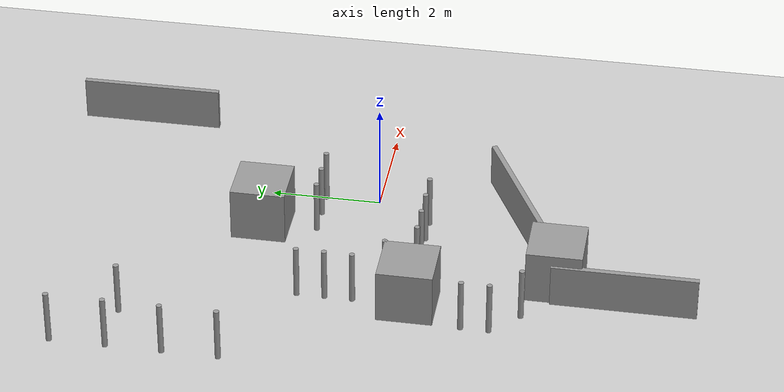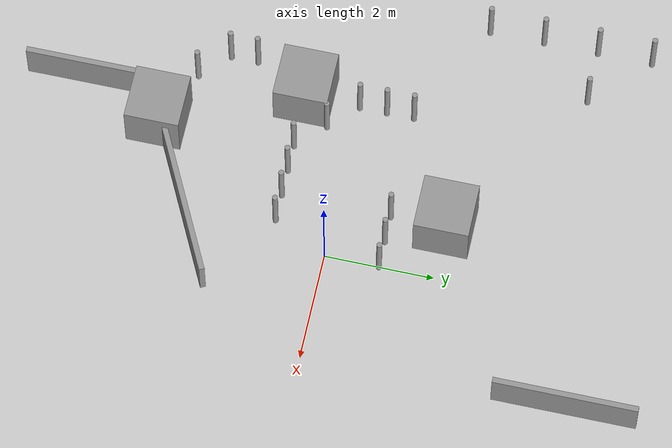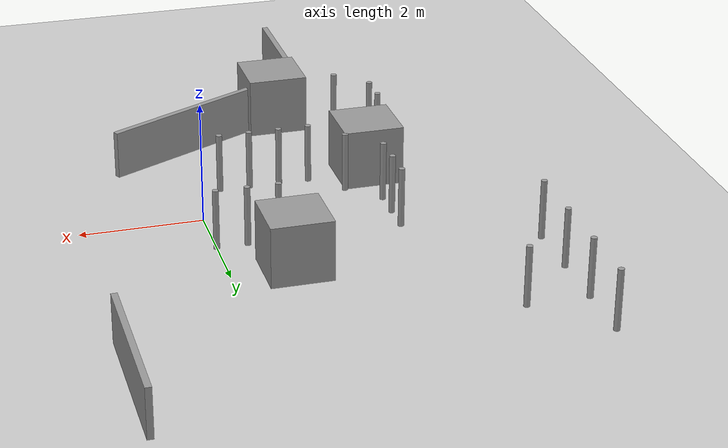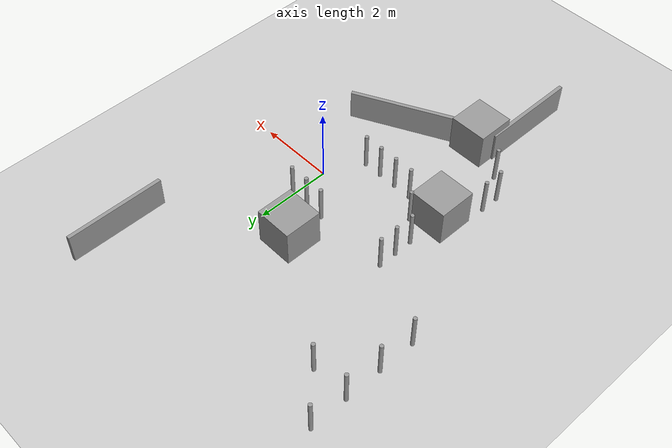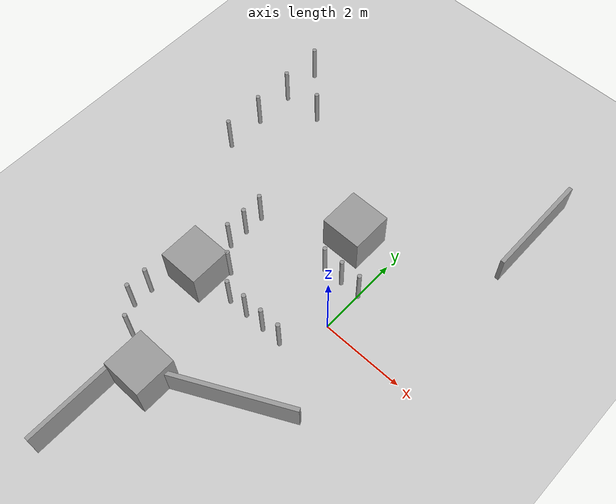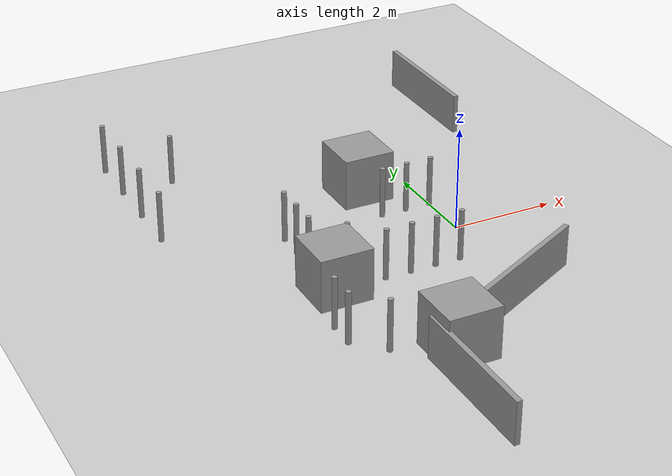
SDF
<sdf version="1.7">
 <world name="default">
  <model name="ground_plane">
   <static>1</static>
   <link name="link">
    <collision name="collision">
     <geometry><plane><normal>0 0 1</normal><size>100 100</size></plane></geometry>
     <surface>
      <contact><collide_bitmask>65535</collide_bitmask></contact>
      <friction><ode><mu>100</mu><mu2>50</mu2></ode></friction>
     </surface>
    </collision>
    <visual name="visual">
     <cast_shadows>0</cast_shadows>
     <geometry><plane><normal>0 0 1</normal><size>100 100</size></plane></geometry>
     <material>
      <script><uri>file://media/materials/scripts/gazebo.material</uri><name>Gazebo/Grey</name></script>
     </material>
    </visual>
   </link>
  </model>
  <model name="Cylindar_r01">
   <link name="link_0">
    <inertial>
     <mass>1</mass>
     <inertia><ixx>0.145833</ixx><ixy>0</ixy><ixz>0</ixz><iyy>0.145833</iyy><iyz>0</iyz><izz>0.125</izz></inertia>
    </inertial>
    <visual name="visual">
     <geometry><cylinder><radius>0.05</radius><length>1</length></cylinder></geometry>
     <material>
      <lighting>1</lighting>
      <script><uri>file://media/materials/scripts/gazebo.material</uri><name>Gazebo/Grey</name></script>
      <shader type="pixel"><normal_map>__default__</normal_map></shader>
      <ambient>0.3 0.3 0.3 1</ambient>
      <diffuse>0.7 0.7 0.7 1</diffuse>
      <specular>0.01 0.01 0.01 1</specular>
      <emissive>0 0 0 1</emissive>
     </material>
    </visual>
    <collision name="collision">
     <geometry><cylinder><radius>0.05</radius><length>1</length></cylinder></geometry>
     <surface>
      <friction>
       <ode><mu>1</mu><mu2>1</mu2><fdir1>0 0 0</fdir1><slip1>0</slip1><slip2>0</slip2></ode>
       <torsional>
        <coefficient>1</coefficient>
        <patch_radius>0</patch_radius>
        <surface_radius>0</surface_radius>
        <use_patch_radius>1</use_patch_radius>
        <ode><slip>0</slip></ode>
       </torsional>
      </friction>
      <bounce><restitution_coefficient>0</restitution_coefficient><threshold>1e+06</threshold></bounce>
      <contact>
       <collide_without_contact>0</collide_without_contact>
       <collide_without_contact_bitmask>1</collide_without_contact_bitmask>
       <collide_bitmask>1</collide_bitmask>
       <ode>
        <soft_cfm>0</soft_cfm>
        <soft_erp>0.2</soft_erp>
        <kp>1e+13</kp>
        <kd>1</kd>
        <max_vel>0.01</max_vel>
        <min_depth>0</min_depth>
       </ode>
       <bullet>
        <split_impulse>1</split_impulse>
        <split_impulse_penetration_threshold>-0.01</split_impulse_penetration_threshold>
        <soft_cfm>0</soft_cfm>
        <soft_erp>0.2</soft_erp>
        <kp>1e+13</kp>
        <kd>1</kd>
       </bullet>
      </contact>
     </surface>
    </collision>
   </link>
   <static>0</static>
   <pose>0 1 0.5 0 -0 0</pose>
  </model>
  <model name="Cylindar_r01_clone_3">
   <link name="link_0">
    <inertial>
     <mass>1</mass>
     <inertia><ixx>0.145833</ixx><ixy>0</ixy><ixz>0</ixz><iyy>0.145833</iyy><iyz>0</iyz><izz>0.125</izz></inertia>
    </inertial>
    <visual name="visual">
     <geometry><cylinder><radius>0.05</radius><length>1</length></cylinder></geometry>
     <material>
      <lighting>1</lighting>
      <script><uri>file://media/materials/scripts/gazebo.material</uri><name>Gazebo/Grey</name></script>
      <shader type="pixel"><normal_map>__default__</normal_map></shader>
      <ambient>0.3 0.3 0.3 1</ambient>
      <diffuse>0.7 0.7 0.7 1</diffuse>
      <specular>0.01 0.01 0.01 1</specular>
      <emissive>0 0 0 1</emissive>
     </material>
    </visual>
    <collision name="collision">
     <geometry><cylinder><radius>0.05</radius><length>1</length></cylinder></geometry>
     <surface>
      <friction>
       <ode><mu>1</mu><mu2>1</mu2><fdir1>0 0 0</fdir1><slip1>0</slip1><slip2>0</slip2></ode>
       <torsional>
        <coefficient>1</coefficient>
        <patch_radius>0</patch_radius>
        <surface_radius>0</surface_radius>
        <use_patch_radius>1</use_patch_radius>
        <ode><slip>0</slip></ode>
       </torsional>
      </friction>
      <bounce><restitution_coefficient>0</restitution_coefficient><threshold>1e+06</threshold></bounce>
      <contact>
       <collide_without_contact>0</collide_without_contact>
       <collide_without_contact_bitmask>1</collide_without_contact_bitmask>
       <collide_bitmask>1</collide_bitmask>
       <ode>
        <soft_cfm>0</soft_cfm>
        <soft_erp>0.2</soft_erp>
        <kp>1e+13</kp>
        <kd>1</kd>
        <max_vel>0.01</max_vel>
        <min_depth>0</min_depth>
       </ode>
       <bullet>
        <split_impulse>1</split_impulse>
        <split_impulse_penetration_threshold>-0.01</split_impulse_penetration_threshold>
        <soft_cfm>0</soft_cfm>
        <soft_erp>0.2</soft_erp>
        <kp>1e+13</kp>
        <kd>1</kd>
       </bullet>
      </contact>
     </surface>
    </collision>
   </link>
   <static>0</static>
   <pose>-0.5 1 0.5 0 -0 0</pose>
  </model>
  <model name="Cylindar_r01_clone_4">
   <link name="link_0">
    <inertial>
     <mass>1</mass>
     <inertia><ixx>0.145833</ixx><ixy>0</ixy><ixz>0</ixz><iyy>0.145833</iyy><iyz>0</iyz><izz>0.125</izz></inertia>
    </inertial>
    <visual name="visual">
     <geometry><cylinder><radius>0.05</radius><length>1</length></cylinder></geometry>
     <material>
      <lighting>1</lighting>
      <script><uri>file://media/materials/scripts/gazebo.material</uri><name>Gazebo/Grey</name></script>
      <shader type="pixel"><normal_map>__default__</normal_map></shader>
      <ambient>0.3 0.3 0.3 1</ambient>
      <diffuse>0.7 0.7 0.7 1</diffuse>
      <specular>0.01 0.01 0.01 1</specular>
      <emissive>0 0 0 1</emissive>
     </material>
    </visual>
    <collision name="collision">
     <geometry><cylinder><radius>0.05</radius><length>1</length></cylinder></geometry>
     <surface>
      <friction>
       <ode><mu>1</mu><mu2>1</mu2><fdir1>0 0 0</fdir1><slip1>0</slip1><slip2>0</slip2></ode>
       <torsional>
        <coefficient>1</coefficient>
        <patch_radius>0</patch_radius>
        <surface_radius>0</surface_radius>
        <use_patch_radius>1</use_patch_radius>
        <ode><slip>0</slip></ode>
       </torsional>
      </friction>
      <bounce><restitution_coefficient>0</restitution_coefficient><threshold>1e+06</threshold></bounce>
      <contact>
       <collide_without_contact>0</collide_without_contact>
       <collide_without_contact_bitmask>1</collide_without_contact_bitmask>
       <collide_bitmask>1</collide_bitmask>
       <ode>
        <soft_cfm>0</soft_cfm>
        <soft_erp>0.2</soft_erp>
        <kp>1e+13</kp>
        <kd>1</kd>
        <max_vel>0.01</max_vel>
        <min_depth>0</min_depth>
       </ode>
       <bullet>
        <split_impulse>1</split_impulse>
        <split_impulse_penetration_threshold>-0.01</split_impulse_penetration_threshold>
        <soft_cfm>0</soft_cfm>
        <soft_erp>0.2</soft_erp>
        <kp>1e+13</kp>
        <kd>1</kd>
       </bullet>
      </contact>
     </surface>
    </collision>
   </link>
   <static>0</static>
   <pose>-1 1 0.5 0 -0 0</pose>
  </model>
  <model name="Cylindar_r01_clone_10">
   <link name="link_0">
    <inertial>
     <mass>1</mass>
     <inertia><ixx>0.145833</ixx><ixy>0</ixy><ixz>0</ixz><iyy>0.145833</iyy><iyz>0</iyz><izz>0.125</izz></inertia>
    </inertial>
    <visual name="visual">
     <geometry><cylinder><radius>0.05</radius><length>1</length></cylinder></geometry>
     <material>
      <lighting>1</lighting>
      <script><uri>file://media/materials/scripts/gazebo.material</uri><name>Gazebo/Grey</name></script>
      <shader type="pixel"><normal_map>__default__</normal_map></shader>
      <ambient>0.3 0.3 0.3 1</ambient>
      <diffuse>0.7 0.7 0.7 1</diffuse>
      <specular>0.01 0.01 0.01 1</specular>
      <emissive>0 0 0 1</emissive>
     </material>
    </visual>
    <collision name="collision">
     <geometry><cylinder><radius>0.05</radius><length>1</length></cylinder></geometry>
     <surface>
      <friction>
       <ode><mu>1</mu><mu2>1</mu2><fdir1>0 0 0</fdir1><slip1>0</slip1><slip2>0</slip2></ode>
       <torsional>
        <coefficient>1</coefficient>
        <patch_radius>0</patch_radius>
        <surface_radius>0</surface_radius>
        <use_patch_radius>1</use_patch_radius>
        <ode><slip>0</slip></ode>
       </torsional>
      </friction>
      <bounce><restitution_coefficient>0</restitution_coefficient><threshold>1e+06</threshold></bounce>
      <contact>
       <collide_without_contact>0</collide_without_contact>
       <collide_without_contact_bitmask>1</collide_without_contact_bitmask>
       <collide_bitmask>1</collide_bitmask>
       <ode>
        <soft_cfm>0</soft_cfm>
        <soft_erp>0.2</soft_erp>
        <kp>1e+13</kp>
        <kd>1</kd>
        <max_vel>0.01</max_vel>
        <min_depth>0</min_depth>
       </ode>
       <bullet>
        <split_impulse>1</split_impulse>
        <split_impulse_penetration_threshold>-0.01</split_impulse_penetration_threshold>
        <soft_cfm>0</soft_cfm>
        <soft_erp>0.2</soft_erp>
        <kp>1e+13</kp>
        <kd>1</kd>
       </bullet>
      </contact>
     </surface>
    </collision>
   </link>
   <static>0</static>
   <pose>-0.5 -1 0.5 0 -0 0</pose>
  </model>
  <model name="Cylindar_r01_clone_11">
   <link name="link_0">
    <inertial>
     <mass>1</mass>
     <inertia><ixx>0.145833</ixx><ixy>0</ixy><ixz>0</ixz><iyy>0.145833</iyy><iyz>0</iyz><izz>0.125</izz></inertia>
    </inertial>
    <visual name="visual">
     <geometry><cylinder><radius>0.05</radius><length>1</length></cylinder></geometry>
     <material>
      <lighting>1</lighting>
      <script><uri>file://media/materials/scripts/gazebo.material</uri><name>Gazebo/Grey</name></script>
      <shader type="pixel"><normal_map>__default__</normal_map></shader>
      <ambient>0.3 0.3 0.3 1</ambient>
      <diffuse>0.7 0.7 0.7 1</diffuse>
      <specular>0.01 0.01 0.01 1</specular>
      <emissive>0 0 0 1</emissive>
     </material>
    </visual>
    <collision name="collision">
     <geometry><cylinder><radius>0.05</radius><length>1</length></cylinder></geometry>
     <surface>
      <friction>
       <ode><mu>1</mu><mu2>1</mu2><fdir1>0 0 0</fdir1><slip1>0</slip1><slip2>0</slip2></ode>
       <torsional>
        <coefficient>1</coefficient>
        <patch_radius>0</patch_radius>
        <surface_radius>0</surface_radius>
        <use_patch_radius>1</use_patch_radius>
        <ode><slip>0</slip></ode>
       </torsional>
      </friction>
      <bounce><restitution_coefficient>0</restitution_coefficient><threshold>1e+06</threshold></bounce>
      <contact>
       <collide_without_contact>0</collide_without_contact>
       <collide_without_contact_bitmask>1</collide_without_contact_bitmask>
       <collide_bitmask>1</collide_bitmask>
       <ode>
        <soft_cfm>0</soft_cfm>
        <soft_erp>0.2</soft_erp>
        <kp>1e+13</kp>
        <kd>1</kd>
        <max_vel>0.01</max_vel>
        <min_depth>0</min_depth>
       </ode>
       <bullet>
        <split_impulse>1</split_impulse>
        <split_impulse_penetration_threshold>-0.01</split_impulse_penetration_threshold>
        <soft_cfm>0</soft_cfm>
        <soft_erp>0.2</soft_erp>
        <kp>1e+13</kp>
        <kd>1</kd>
       </bullet>
      </contact>
     </surface>
    </collision>
   </link>
   <static>0</static>
   <pose>-1 -1 0.5 0 -0 0</pose>
  </model>
  <model name="Cylindar_r01_clone_11_clone">
   <link name="link_0">
    <inertial>
     <mass>1</mass>
     <inertia><ixx>0.145833</ixx><ixy>0</ixy><ixz>0</ixz><iyy>0.145833</iyy><iyz>0</iyz><izz>0.125</izz></inertia>
    </inertial>
    <visual name="visual">
     <geometry><cylinder><radius>0.05</radius><length>1</length></cylinder></geometry>
     <material>
      <lighting>1</lighting>
      <script><uri>file://media/materials/scripts/gazebo.material</uri><name>Gazebo/Grey</name></script>
      <shader type="pixel"><normal_map>__default__</normal_map></shader>
      <ambient>0.3 0.3 0.3 1</ambient>
      <diffuse>0.7 0.7 0.7 1</diffuse>
      <specular>0.01 0.01 0.01 1</specular>
      <emissive>0 0 0 1</emissive>
     </material>
    </visual>
    <collision name="collision">
     <geometry><cylinder><radius>0.05</radius><length>1</length></cylinder></geometry>
     <surface>
      <friction>
       <ode><mu>1</mu><mu2>1</mu2><fdir1>0 0 0</fdir1><slip1>0</slip1><slip2>0</slip2></ode>
       <torsional>
        <coefficient>1</coefficient>
        <patch_radius>0</patch_radius>
        <surface_radius>0</surface_radius>
        <use_patch_radius>1</use_patch_radius>
        <ode><slip>0</slip></ode>
       </torsional>
      </friction>
      <bounce><restitution_coefficient>0</restitution_coefficient><threshold>1e+06</threshold></bounce>
      <contact>
       <collide_without_contact>0</collide_without_contact>
       <collide_without_contact_bitmask>1</collide_without_contact_bitmask>
       <collide_bitmask>1</collide_bitmask>
       <ode>
        <soft_cfm>0</soft_cfm>
        <soft_erp>0.2</soft_erp>
        <kp>1e+13</kp>
        <kd>1</kd>
        <max_vel>0.01</max_vel>
        <min_depth>0</min_depth>
       </ode>
       <bullet>
        <split_impulse>1</split_impulse>
        <split_impulse_penetration_threshold>-0.01</split_impulse_penetration_threshold>
        <soft_cfm>0</soft_cfm>
        <soft_erp>0.2</soft_erp>
        <kp>1e+13</kp>
        <kd>1</kd>
       </bullet>
      </contact>
     </surface>
    </collision>
   </link>
   <static>0</static>
   <pose>-1.5 -1 0.5 0 -0 0</pose>
  </model>
  <model name="Cylindar_r01_clone_11_clone_0">
   <link name="link_0">
    <inertial>
     <mass>1</mass>
     <inertia><ixx>0.145833</ixx><ixy>0</ixy><ixz>0</ixz><iyy>0.145833</iyy><iyz>0</iyz><izz>0.125</izz></inertia>
    </inertial>
    <visual name="visual">
     <geometry><cylinder><radius>0.05</radius><length>1</length></cylinder></geometry>
     <material>
      <lighting>1</lighting>
      <script><uri>file://media/materials/scripts/gazebo.material</uri><name>Gazebo/Grey</name></script>
      <shader type="pixel"><normal_map>__default__</normal_map></shader>
      <ambient>0.3 0.3 0.3 1</ambient>
      <diffuse>0.7 0.7 0.7 1</diffuse>
      <specular>0.01 0.01 0.01 1</specular>
      <emissive>0 0 0 1</emissive>
     </material>
    </visual>
    <collision name="collision">
     <geometry><cylinder><radius>0.05</radius><length>1</length></cylinder></geometry>
     <surface>
      <friction>
       <ode><mu>1</mu><mu2>1</mu2><fdir1>0 0 0</fdir1><slip1>0</slip1><slip2>0</slip2></ode>
       <torsional>
        <coefficient>1</coefficient>
        <patch_radius>0</patch_radius>
        <surface_radius>0</surface_radius>
        <use_patch_radius>1</use_patch_radius>
        <ode><slip>0</slip></ode>
       </torsional>
      </friction>
      <bounce><restitution_coefficient>0</restitution_coefficient><threshold>1e+06</threshold></bounce>
      <contact>
       <collide_without_contact>0</collide_without_contact>
       <collide_without_contact_bitmask>1</collide_without_contact_bitmask>
       <collide_bitmask>1</collide_bitmask>
       <ode>
        <soft_cfm>0</soft_cfm>
        <soft_erp>0.2</soft_erp>
        <kp>1e+13</kp>
        <kd>1</kd>
        <max_vel>0.01</max_vel>
        <min_depth>0</min_depth>
       </ode>
       <bullet>
        <split_impulse>1</split_impulse>
        <split_impulse_penetration_threshold>-0.01</split_impulse_penetration_threshold>
        <soft_cfm>0</soft_cfm>
        <soft_erp>0.2</soft_erp>
        <kp>1e+13</kp>
        <kd>1</kd>
       </bullet>
      </contact>
     </surface>
    </collision>
   </link>
   <static>0</static>
   <pose>-2 -1 0.5 0 -0 0</pose>
  </model>
  <model name="Cylindar_r01_clone_11_clone_1">
   <link name="link_0">
    <inertial>
     <mass>1</mass>
     <inertia><ixx>0.145833</ixx><ixy>0</ixy><ixz>0</ixz><iyy>0.145833</iyy><iyz>0</iyz><izz>0.125</izz></inertia>
    </inertial>
    <visual name="visual">
     <geometry><cylinder><radius>0.05</radius><length>1</length></cylinder></geometry>
     <material>
      <lighting>1</lighting>
      <script><uri>file://media/materials/scripts/gazebo.material</uri><name>Gazebo/Grey</name></script>
      <shader type="pixel"><normal_map>__default__</normal_map></shader>
      <ambient>0.3 0.3 0.3 1</ambient>
      <diffuse>0.7 0.7 0.7 1</diffuse>
      <specular>0.01 0.01 0.01 1</specular>
      <emissive>0 0 0 1</emissive>
     </material>
    </visual>
    <collision name="collision">
     <geometry><cylinder><radius>0.05</radius><length>1</length></cylinder></geometry>
     <surface>
      <friction>
       <ode><mu>1</mu><mu2>1</mu2><fdir1>0 0 0</fdir1><slip1>0</slip1><slip2>0</slip2></ode>
       <torsional>
        <coefficient>1</coefficient>
        <patch_radius>0</patch_radius>
        <surface_radius>0</surface_radius>
        <use_patch_radius>1</use_patch_radius>
        <ode><slip>0</slip></ode>
       </torsional>
      </friction>
      <bounce><restitution_coefficient>0</restitution_coefficient><threshold>1e+06</threshold></bounce>
      <contact>
       <collide_without_contact>0</collide_without_contact>
       <collide_without_contact_bitmask>1</collide_without_contact_bitmask>
       <collide_bitmask>1</collide_bitmask>
       <ode>
        <soft_cfm>0</soft_cfm>
        <soft_erp>0.2</soft_erp>
        <kp>1e+13</kp>
        <kd>1</kd>
        <max_vel>0.01</max_vel>
        <min_depth>0</min_depth>
       </ode>
       <bullet>
        <split_impulse>1</split_impulse>
        <split_impulse_penetration_threshold>-0.01</split_impulse_penetration_threshold>
        <soft_cfm>0</soft_cfm>
        <soft_erp>0.2</soft_erp>
        <kp>1e+13</kp>
        <kd>1</kd>
       </bullet>
      </contact>
     </surface>
    </collision>
   </link>
   <static>0</static>
   <pose>-2.5 -0.5 0.5 0 -0 0</pose>
  </model>
  <model name="Cylindar_r01_clone_11_clone_2">
   <link name="link_0">
    <inertial>
     <mass>1</mass>
     <inertia><ixx>0.145833</ixx><ixy>0</ixy><ixz>0</ixz><iyy>0.145833</iyy><iyz>0</iyz><izz>0.125</izz></inertia>
    </inertial>
    <visual name="visual">
     <geometry><cylinder><radius>0.05</radius><length>1</length></cylinder></geometry>
     <material>
      <lighting>1</lighting>
      <script><uri>file://media/materials/scripts/gazebo.material</uri><name>Gazebo/Grey</name></script>
      <shader type="pixel"><normal_map>__default__</normal_map></shader>
      <ambient>0.3 0.3 0.3 1</ambient>
      <diffuse>0.7 0.7 0.7 1</diffuse>
      <specular>0.01 0.01 0.01 1</specular>
      <emissive>0 0 0 1</emissive>
     </material>
    </visual>
    <collision name="collision">
     <geometry><cylinder><radius>0.05</radius><length>1</length></cylinder></geometry>
     <surface>
      <friction>
       <ode><mu>1</mu><mu2>1</mu2><fdir1>0 0 0</fdir1><slip1>0</slip1><slip2>0</slip2></ode>
       <torsional>
        <coefficient>1</coefficient>
        <patch_radius>0</patch_radius>
        <surface_radius>0</surface_radius>
        <use_patch_radius>1</use_patch_radius>
        <ode><slip>0</slip></ode>
       </torsional>
      </friction>
      <bounce><restitution_coefficient>0</restitution_coefficient><threshold>1e+06</threshold></bounce>
      <contact>
       <collide_without_contact>0</collide_without_contact>
       <collide_without_contact_bitmask>1</collide_without_contact_bitmask>
       <collide_bitmask>1</collide_bitmask>
       <ode>
        <soft_cfm>0</soft_cfm>
        <soft_erp>0.2</soft_erp>
        <kp>1e+13</kp>
        <kd>1</kd>
        <max_vel>0.01</max_vel>
        <min_depth>0</min_depth>
       </ode>
       <bullet>
        <split_impulse>1</split_impulse>
        <split_impulse_penetration_threshold>-0.01</split_impulse_penetration_threshold>
        <soft_cfm>0</soft_cfm>
        <soft_erp>0.2</soft_erp>
        <kp>1e+13</kp>
        <kd>1</kd>
       </bullet>
      </contact>
     </surface>
    </collision>
   </link>
   <static>0</static>
   <pose>-3 0 0.5 0 -0 0</pose>
  </model>
  <model name="Cylindar_r01_clone_11_clone_3">
   <link name="link_0">
    <inertial>
     <mass>1</mass>
     <inertia><ixx>0.145833</ixx><ixy>0</ixy><ixz>0</ixz><iyy>0.145833</iyy><iyz>0</iyz><izz>0.125</izz></inertia>
    </inertial>
    <visual name="visual">
     <geometry><cylinder><radius>0.05</radius><length>1</length></cylinder></geometry>
     <material>
      <lighting>1</lighting>
      <script><uri>file://media/materials/scripts/gazebo.material</uri><name>Gazebo/Grey</name></script>
      <shader type="pixel"><normal_map>__default__</normal_map></shader>
      <ambient>0.3 0.3 0.3 1</ambient>
      <diffuse>0.7 0.7 0.7 1</diffuse>
      <specular>0.01 0.01 0.01 1</specular>
      <emissive>0 0 0 1</emissive>
     </material>
    </visual>
    <collision name="collision">
     <geometry><cylinder><radius>0.05</radius><length>1</length></cylinder></geometry>
     <surface>
      <friction>
       <ode><mu>1</mu><mu2>1</mu2><fdir1>0 0 0</fdir1><slip1>0</slip1><slip2>0</slip2></ode>
       <torsional>
        <coefficient>1</coefficient>
        <patch_radius>0</patch_radius>
        <surface_radius>0</surface_radius>
        <use_patch_radius>1</use_patch_radius>
        <ode><slip>0</slip></ode>
       </torsional>
      </friction>
      <bounce><restitution_coefficient>0</restitution_coefficient><threshold>1e+06</threshold></bounce>
      <contact>
       <collide_without_contact>0</collide_without_contact>
       <collide_without_contact_bitmask>1</collide_without_contact_bitmask>
       <collide_bitmask>1</collide_bitmask>
       <ode>
        <soft_cfm>0</soft_cfm>
        <soft_erp>0.2</soft_erp>
        <kp>1e+13</kp>
        <kd>1</kd>
        <max_vel>0.01</max_vel>
        <min_depth>0</min_depth>
       </ode>
       <bullet>
        <split_impulse>1</split_impulse>
        <split_impulse_penetration_threshold>-0.01</split_impulse_penetration_threshold>
        <soft_cfm>0</soft_cfm>
        <soft_erp>0.2</soft_erp>
        <kp>1e+13</kp>
        <kd>1</kd>
       </bullet>
      </contact>
     </surface>
    </collision>
   </link>
   <static>0</static>
   <pose>-3 0.5 0.5 0 -0 0</pose>
  </model>
  <model name="Cylindar_r01_clone_11_clone_4">
   <link name="link_0">
    <inertial>
     <mass>1</mass>
     <inertia><ixx>0.145833</ixx><ixy>0</ixy><ixz>0</ixz><iyy>0.145833</iyy><iyz>0</iyz><izz>0.125</izz></inertia>
    </inertial>
    <visual name="visual">
     <geometry><cylinder><radius>0.05</radius><length>1</length></cylinder></geometry>
     <material>
      <lighting>1</lighting>
      <script><uri>file://media/materials/scripts/gazebo.material</uri><name>Gazebo/Grey</name></script>
      <shader type="pixel"><normal_map>__default__</normal_map></shader>
      <ambient>0.3 0.3 0.3 1</ambient>
      <diffuse>0.7 0.7 0.7 1</diffuse>
      <specular>0.01 0.01 0.01 1</specular>
      <emissive>0 0 0 1</emissive>
     </material>
    </visual>
    <collision name="collision">
     <geometry><cylinder><radius>0.05</radius><length>1</length></cylinder></geometry>
     <surface>
      <friction>
       <ode><mu>1</mu><mu2>1</mu2><fdir1>0 0 0</fdir1><slip1>0</slip1><slip2>0</slip2></ode>
       <torsional>
        <coefficient>1</coefficient>
        <patch_radius>0</patch_radius>
        <surface_radius>0</surface_radius>
        <use_patch_radius>1</use_patch_radius>
        <ode><slip>0</slip></ode>
       </torsional>
      </friction>
      <bounce><restitution_coefficient>0</restitution_coefficient><threshold>1e+06</threshold></bounce>
      <contact>
       <collide_without_contact>0</collide_without_contact>
       <collide_without_contact_bitmask>1</collide_without_contact_bitmask>
       <collide_bitmask>1</collide_bitmask>
       <ode>
        <soft_cfm>0</soft_cfm>
        <soft_erp>0.2</soft_erp>
        <kp>1e+13</kp>
        <kd>1</kd>
        <max_vel>0.01</max_vel>
        <min_depth>0</min_depth>
       </ode>
       <bullet>
        <split_impulse>1</split_impulse>
        <split_impulse_penetration_threshold>-0.01</split_impulse_penetration_threshold>
        <soft_cfm>0</soft_cfm>
        <soft_erp>0.2</soft_erp>
        <kp>1e+13</kp>
        <kd>1</kd>
       </bullet>
      </contact>
     </surface>
    </collision>
   </link>
   <static>0</static>
   <pose>-3 1 0.5 0 -0 0</pose>
  </model>
  <model name="unit_box">
   <pose>-3 -1 0.5 0 -0 0</pose>
   <link name="link">
    <inertial>
     <mass>1</mass>
     <inertia>
      <ixx>0.166667</ixx>
      <ixy>0</ixy>
      <ixz>0</ixz>
      <iyy>0.166667</iyy>
      <iyz>0</iyz>
      <izz>0.166667</izz>
     </inertia>
    </inertial>
    <collision name="collision"><geometry><box><size>1 1 1</size></box></geometry></collision>
    <visual name="visual">
     <geometry><box><size>1 1 1</size></box></geometry>
     <material>
      <script><name>Gazebo/Grey</name><uri>file://media/materials/scripts/gazebo.material</uri></script>
     </material>
    </visual>
   </link>
  </model>
  <model name="unit_box_0">
   <pose>-1 2 0.5 0 -0 0</pose>
   <link name="link">
    <inertial>
     <mass>1</mass>
     <inertia>
      <ixx>0.166667</ixx>
      <ixy>0</ixy>
      <ixz>0</ixz>
      <iyy>0.166667</iyy>
      <iyz>0</iyz>
      <izz>0.166667</izz>
     </inertia>
    </inertial>
    <collision name="collision"><geometry><box><size>1 1 1</size></box></geometry></collision>
    <visual name="visual">
     <geometry><box><size>1 1 1</size></box></geometry>
     <material>
      <script><name>Gazebo/Grey</name><uri>file://media/materials/scripts/gazebo.material</uri></script>
     </material>
    </visual>
   </link>
  </model>
  <model name="unit_box_1">
   <pose>-2 -3.5 0.5 0 -0 0</pose>
   <link name="link">
    <inertial>
     <mass>1</mass>
     <inertia>
      <ixx>0.166667</ixx>
      <ixy>0</ixy>
      <ixz>0</ixz>
      <iyy>0.166667</iyy>
      <iyz>0</iyz>
      <izz>0.166667</izz>
     </inertia>
    </inertial>
    <collision name="collision"><geometry><box><size>1 1 1</size></box></geometry></collision>
    <visual name="visual">
     <geometry><box><size>1 1 1</size></box></geometry>
     <material>
      <script><name>Gazebo/Grey</name><uri>file://media/materials/scripts/gazebo.material</uri></script>
     </material>
    </visual>
   </link>
  </model>
  <model name="wall_connected">
   <pose>-0.5 -1.78354 0 0 -0 0</pose>
   <link name="Wall_12">
    <collision name="Wall_12_Collision">
     <geometry><box><size>3.4541 0.1 0.8</size></box></geometry>
     <pose>0 0 0.4 0 -0 0</pose>
    </collision>
    <visual name="Wall_12_Visual">
     <pose>0 0 0.4 0 -0 0</pose>
     <geometry><box><size>3.4541 0.1 0.8</size></box></geometry>
     <material>
      <script><uri>file://media/materials/scripts/gazebo.material</uri><name>Gazebo/Grey</name></script>
      <ambient>1 1 1 1</ambient>
     </material>
     <meta><layer>0</layer></meta>
    </visual>
    <pose>0 -0.966459 0 0 -0 -2.67794</pose>
   </link>
   <static>1</static>
  </model>
  <model name="Cylindar_r01_clone_11_clone_0_clone">
   <link name="link_0">
    <inertial>
     <mass>1</mass>
     <inertia><ixx>0.145833</ixx><ixy>0</ixy><ixz>0</ixz><iyy>0.145833</iyy><iyz>0</iyz><izz>0.125</izz></inertia>
    </inertial>
    <visual name="visual">
     <geometry><cylinder><radius>0.05</radius><length>1</length></cylinder></geometry>
     <material>
      <lighting>1</lighting>
      <script><uri>file://media/materials/scripts/gazebo.material</uri><name>Gazebo/Grey</name></script>
      <shader type="pixel"><normal_map>__default__</normal_map></shader>
      <ambient>0.3 0.3 0.3 1</ambient>
      <diffuse>0.7 0.7 0.7 1</diffuse>
      <specular>0.01 0.01 0.01 1</specular>
      <emissive>0 0 0 1</emissive>
     </material>
    </visual>
    <collision name="collision">
     <geometry><cylinder><radius>0.05</radius><length>1</length></cylinder></geometry>
     <surface>
      <friction>
       <ode><mu>1</mu><mu2>1</mu2><fdir1>0 0 0</fdir1><slip1>0</slip1><slip2>0</slip2></ode>
       <torsional>
        <coefficient>1</coefficient>
        <patch_radius>0</patch_radius>
        <surface_radius>0</surface_radius>
        <use_patch_radius>1</use_patch_radius>
        <ode><slip>0</slip></ode>
       </torsional>
      </friction>
      <bounce><restitution_coefficient>0</restitution_coefficient><threshold>1e+06</threshold></bounce>
      <contact>
       <collide_without_contact>0</collide_without_contact>
       <collide_without_contact_bitmask>1</collide_without_contact_bitmask>
       <collide_bitmask>1</collide_bitmask>
       <ode>
        <soft_cfm>0</soft_cfm>
        <soft_erp>0.2</soft_erp>
        <kp>1e+13</kp>
        <kd>1</kd>
        <max_vel>0.01</max_vel>
        <min_depth>0</min_depth>
       </ode>
       <bullet>
        <split_impulse>1</split_impulse>
        <split_impulse_penetration_threshold>-0.01</split_impulse_penetration_threshold>
        <soft_cfm>0</soft_cfm>
        <soft_erp>0.2</soft_erp>
        <kp>1e+13</kp>
        <kd>1</kd>
       </bullet>
      </contact>
     </surface>
    </collision>
   </link>
   <static>0</static>
   <pose>-3 -3 0.5 0 -0 0</pose>
  </model>
  <model name="Cylindar_r01_clone_11_clone_0_clone_0">
   <link name="link_0">
    <inertial>
     <mass>1</mass>
     <inertia><ixx>0.145833</ixx><ixy>0</ixy><ixz>0</ixz><iyy>0.145833</iyy><iyz>0</iyz><izz>0.125</izz></inertia>
    </inertial>
    <visual name="visual">
     <geometry><cylinder><radius>0.05</radius><length>1</length></cylinder></geometry>
     <material>
      <lighting>1</lighting>
      <script><uri>file://media/materials/scripts/gazebo.material</uri><name>Gazebo/Grey</name></script>
      <shader type="pixel"><normal_map>__default__</normal_map></shader>
      <ambient>0.3 0.3 0.3 1</ambient>
      <diffuse>0.7 0.7 0.7 1</diffuse>
      <specular>0.01 0.01 0.01 1</specular>
      <emissive>0 0 0 1</emissive>
     </material>
    </visual>
    <collision name="collision">
     <geometry><cylinder><radius>0.05</radius><length>1</length></cylinder></geometry>
     <surface>
      <friction>
       <ode><mu>1</mu><mu2>1</mu2><fdir1>0 0 0</fdir1><slip1>0</slip1><slip2>0</slip2></ode>
       <torsional>
        <coefficient>1</coefficient>
        <patch_radius>0</patch_radius>
        <surface_radius>0</surface_radius>
        <use_patch_radius>1</use_patch_radius>
        <ode><slip>0</slip></ode>
       </torsional>
      </friction>
      <bounce><restitution_coefficient>0</restitution_coefficient><threshold>1e+06</threshold></bounce>
      <contact>
       <collide_without_contact>0</collide_without_contact>
       <collide_without_contact_bitmask>1</collide_without_contact_bitmask>
       <collide_bitmask>1</collide_bitmask>
       <ode>
        <soft_cfm>0</soft_cfm>
        <soft_erp>0.2</soft_erp>
        <kp>1e+13</kp>
        <kd>1</kd>
        <max_vel>0.01</max_vel>
        <min_depth>0</min_depth>
       </ode>
       <bullet>
        <split_impulse>1</split_impulse>
        <split_impulse_penetration_threshold>-0.01</split_impulse_penetration_threshold>
        <soft_cfm>0</soft_cfm>
        <soft_erp>0.2</soft_erp>
        <kp>1e+13</kp>
        <kd>1</kd>
       </bullet>
      </contact>
     </surface>
    </collision>
   </link>
   <static>0</static>
   <pose>-3.5 -2.5 0.5 0 -0 0</pose>
  </model>
  <model name="Cylindar_r01_clone_11_clone_0_clone_1">
   <link name="link_0">
    <inertial>
     <mass>1</mass>
     <inertia><ixx>0.145833</ixx><ixy>0</ixy><ixz>0</ixz><iyy>0.145833</iyy><iyz>0</iyz><izz>0.125</izz></inertia>
    </inertial>
    <visual name="visual">
     <geometry><cylinder><radius>0.05</radius><length>1</length></cylinder></geometry>
     <material>
      <lighting>1</lighting>
      <script><uri>file://media/materials/scripts/gazebo.material</uri><name>Gazebo/Grey</name></script>
      <shader type="pixel"><normal_map>__default__</normal_map></shader>
      <ambient>0.3 0.3 0.3 1</ambient>
      <diffuse>0.7 0.7 0.7 1</diffuse>
      <specular>0.01 0.01 0.01 1</specular>
      <emissive>0 0 0 1</emissive>
     </material>
    </visual>
    <collision name="collision">
     <geometry><cylinder><radius>0.05</radius><length>1</length></cylinder></geometry>
     <surface>
      <friction>
       <ode><mu>1</mu><mu2>1</mu2><fdir1>0 0 0</fdir1><slip1>0</slip1><slip2>0</slip2></ode>
       <torsional>
        <coefficient>1</coefficient>
        <patch_radius>0</patch_radius>
        <surface_radius>0</surface_radius>
        <use_patch_radius>1</use_patch_radius>
        <ode><slip>0</slip></ode>
       </torsional>
      </friction>
      <bounce><restitution_coefficient>0</restitution_coefficient><threshold>1e+06</threshold></bounce>
      <contact>
       <collide_without_contact>0</collide_without_contact>
       <collide_without_contact_bitmask>1</collide_without_contact_bitmask>
       <collide_bitmask>1</collide_bitmask>
       <ode>
        <soft_cfm>0</soft_cfm>
        <soft_erp>0.2</soft_erp>
        <kp>1e+13</kp>
        <kd>1</kd>
        <max_vel>0.01</max_vel>
        <min_depth>0</min_depth>
       </ode>
       <bullet>
        <split_impulse>1</split_impulse>
        <split_impulse_penetration_threshold>-0.01</split_impulse_penetration_threshold>
        <soft_cfm>0</soft_cfm>
        <soft_erp>0.2</soft_erp>
        <kp>1e+13</kp>
        <kd>1</kd>
       </bullet>
      </contact>
     </surface>
    </collision>
   </link>
   <static>0</static>
   <pose>-3.5 -2 0.5 0 -0 0</pose>
  </model>
  <model name="Cylindar_r01_clone_11_clone_4_clone">
   <link name="link_0">
    <inertial>
     <mass>1</mass>
     <inertia><ixx>0.145833</ixx><ixy>0</ixy><ixz>0</ixz><iyy>0.145833</iyy><iyz>0</iyz><izz>0.125</izz></inertia>
    </inertial>
    <visual name="visual">
     <geometry><cylinder><radius>0.05</radius><length>1</length></cylinder></geometry>
     <material>
      <lighting>1</lighting>
      <script><uri>file://media/materials/scripts/gazebo.material</uri><name>Gazebo/Grey</name></script>
      <shader type="pixel"><normal_map>__default__</normal_map></shader>
      <ambient>0.3 0.3 0.3 1</ambient>
      <diffuse>0.7 0.7 0.7 1</diffuse>
      <specular>0.01 0.01 0.01 1</specular>
      <emissive>0 0 0 1</emissive>
     </material>
    </visual>
    <collision name="collision">
     <geometry><cylinder><radius>0.05</radius><length>1</length></cylinder></geometry>
     <surface>
      <friction>
       <ode><mu>1</mu><mu2>1</mu2><fdir1>0 0 0</fdir1><slip1>0</slip1><slip2>0</slip2></ode>
       <torsional>
        <coefficient>1</coefficient>
        <patch_radius>0</patch_radius>
        <surface_radius>0</surface_radius>
        <use_patch_radius>1</use_patch_radius>
        <ode><slip>0</slip></ode>
       </torsional>
      </friction>
      <bounce><restitution_coefficient>0</restitution_coefficient><threshold>1e+06</threshold></bounce>
      <contact>
       <collide_without_contact>0</collide_without_contact>
       <collide_without_contact_bitmask>1</collide_without_contact_bitmask>
       <collide_bitmask>1</collide_bitmask>
       <ode>
        <soft_cfm>0</soft_cfm>
        <soft_erp>0.2</soft_erp>
        <kp>1e+13</kp>
        <kd>1</kd>
        <max_vel>0.01</max_vel>
        <min_depth>0</min_depth>
       </ode>
       <bullet>
        <split_impulse>1</split_impulse>
        <split_impulse_penetration_threshold>-0.01</split_impulse_penetration_threshold>
        <soft_cfm>0</soft_cfm>
        <soft_erp>0.2</soft_erp>
        <kp>1e+13</kp>
        <kd>1</kd>
       </bullet>
      </contact>
     </surface>
    </collision>
   </link>
   <static>0</static>
   <pose>-4 4 0.5 0 -0 0</pose>
  </model>
  <model name="Cylindar_r01_clone_11_clone_4_clone_0">
   <link name="link_0">
    <inertial>
     <mass>1</mass>
     <inertia><ixx>0.145833</ixx><ixy>0</ixy><ixz>0</ixz><iyy>0.145833</iyy><iyz>0</iyz><izz>0.125</izz></inertia>
    </inertial>
    <visual name="visual">
     <geometry><cylinder><radius>0.05</radius><length>1</length></cylinder></geometry>
     <material>
      <lighting>1</lighting>
      <script><uri>file://media/materials/scripts/gazebo.material</uri><name>Gazebo/Grey</name></script>
      <shader type="pixel"><normal_map>__default__</normal_map></shader>
      <ambient>0.3 0.3 0.3 1</ambient>
      <diffuse>0.7 0.7 0.7 1</diffuse>
      <specular>0.01 0.01 0.01 1</specular>
      <emissive>0 0 0 1</emissive>
     </material>
    </visual>
    <collision name="collision">
     <geometry><cylinder><radius>0.05</radius><length>1</length></cylinder></geometry>
     <surface>
      <friction>
       <ode><mu>1</mu><mu2>1</mu2><fdir1>0 0 0</fdir1><slip1>0</slip1><slip2>0</slip2></ode>
       <torsional>
        <coefficient>1</coefficient>
        <patch_radius>0</patch_radius>
        <surface_radius>0</surface_radius>
        <use_patch_radius>1</use_patch_radius>
        <ode><slip>0</slip></ode>
       </torsional>
      </friction>
      <bounce><restitution_coefficient>0</restitution_coefficient><threshold>1e+06</threshold></bounce>
      <contact>
       <collide_without_contact>0</collide_without_contact>
       <collide_without_contact_bitmask>1</collide_without_contact_bitmask>
       <collide_bitmask>1</collide_bitmask>
       <ode>
        <soft_cfm>0</soft_cfm>
        <soft_erp>0.2</soft_erp>
        <kp>1e+13</kp>
        <kd>1</kd>
        <max_vel>0.01</max_vel>
        <min_depth>0</min_depth>
       </ode>
       <bullet>
        <split_impulse>1</split_impulse>
        <split_impulse_penetration_threshold>-0.01</split_impulse_penetration_threshold>
        <soft_cfm>0</soft_cfm>
        <soft_erp>0.2</soft_erp>
        <kp>1e+13</kp>
        <kd>1</kd>
       </bullet>
      </contact>
     </surface>
    </collision>
   </link>
   <static>0</static>
   <pose>-5 5 0.5 0 -0 0</pose>
  </model>
  <model name="Cylindar_r01_clone_11_clone_4_clone_1">
   <link name="link_0">
    <inertial>
     <mass>1</mass>
     <inertia><ixx>0.145833</ixx><ixy>0</ixy><ixz>0</ixz><iyy>0.145833</iyy><iyz>0</iyz><izz>0.125</izz></inertia>
    </inertial>
    <visual name="visual">
     <geometry><cylinder><radius>0.05</radius><length>1</length></cylinder></geometry>
     <material>
      <lighting>1</lighting>
      <script><uri>file://media/materials/scripts/gazebo.material</uri><name>Gazebo/Grey</name></script>
      <shader type="pixel"><normal_map>__default__</normal_map></shader>
      <ambient>0.3 0.3 0.3 1</ambient>
      <diffuse>0.7 0.7 0.7 1</diffuse>
      <specular>0.01 0.01 0.01 1</specular>
      <emissive>0 0 0 1</emissive>
     </material>
    </visual>
    <collision name="collision">
     <geometry><cylinder><radius>0.05</radius><length>1</length></cylinder></geometry>
     <surface>
      <friction>
       <ode><mu>1</mu><mu2>1</mu2><fdir1>0 0 0</fdir1><slip1>0</slip1><slip2>0</slip2></ode>
       <torsional>
        <coefficient>1</coefficient>
        <patch_radius>0</patch_radius>
        <surface_radius>0</surface_radius>
        <use_patch_radius>1</use_patch_radius>
        <ode><slip>0</slip></ode>
       </torsional>
      </friction>
      <bounce><restitution_coefficient>0</restitution_coefficient><threshold>1e+06</threshold></bounce>
      <contact>
       <collide_without_contact>0</collide_without_contact>
       <collide_without_contact_bitmask>1</collide_without_contact_bitmask>
       <collide_bitmask>1</collide_bitmask>
       <ode>
        <soft_cfm>0</soft_cfm>
        <soft_erp>0.2</soft_erp>
        <kp>1e+13</kp>
        <kd>1</kd>
        <max_vel>0.01</max_vel>
        <min_depth>0</min_depth>
       </ode>
       <bullet>
        <split_impulse>1</split_impulse>
        <split_impulse_penetration_threshold>-0.01</split_impulse_penetration_threshold>
        <soft_cfm>0</soft_cfm>
        <soft_erp>0.2</soft_erp>
        <kp>1e+13</kp>
        <kd>1</kd>
       </bullet>
      </contact>
     </surface>
    </collision>
   </link>
   <static>0</static>
   <pose>-5 4 0.5 0 -0 0</pose>
  </model>
  <model name="Cylindar_r01_clone_11_clone_4_clone_2">
   <link name="link_0">
    <inertial>
     <mass>1</mass>
     <inertia><ixx>0.145833</ixx><ixy>0</ixy><ixz>0</ixz><iyy>0.145833</iyy><iyz>0</iyz><izz>0.125</izz></inertia>
    </inertial>
    <visual name="visual">
     <geometry><cylinder><radius>0.05</radius><length>1</length></cylinder></geometry>
     <material>
      <lighting>1</lighting>
      <script><uri>file://media/materials/scripts/gazebo.material</uri><name>Gazebo/Grey</name></script>
      <shader type="pixel"><normal_map>__default__</normal_map></shader>
      <ambient>0.3 0.3 0.3 1</ambient>
      <diffuse>0.7 0.7 0.7 1</diffuse>
      <specular>0.01 0.01 0.01 1</specular>
      <emissive>0 0 0 1</emissive>
     </material>
    </visual>
    <collision name="collision">
     <geometry><cylinder><radius>0.05</radius><length>1</length></cylinder></geometry>
     <surface>
      <friction>
       <ode><mu>1</mu><mu2>1</mu2><fdir1>0 0 0</fdir1><slip1>0</slip1><slip2>0</slip2></ode>
       <torsional>
        <coefficient>1</coefficient>
        <patch_radius>0</patch_radius>
        <surface_radius>0</surface_radius>
        <use_patch_radius>1</use_patch_radius>
        <ode><slip>0</slip></ode>
       </torsional>
      </friction>
      <bounce><restitution_coefficient>0</restitution_coefficient><threshold>1e+06</threshold></bounce>
      <contact>
       <collide_without_contact>0</collide_without_contact>
       <collide_without_contact_bitmask>1</collide_without_contact_bitmask>
       <collide_bitmask>1</collide_bitmask>
       <ode>
        <soft_cfm>0</soft_cfm>
        <soft_erp>0.2</soft_erp>
        <kp>1e+13</kp>
        <kd>1</kd>
        <max_vel>0.01</max_vel>
        <min_depth>0</min_depth>
       </ode>
       <bullet>
        <split_impulse>1</split_impulse>
        <split_impulse_penetration_threshold>-0.01</split_impulse_penetration_threshold>
        <soft_cfm>0</soft_cfm>
        <soft_erp>0.2</soft_erp>
        <kp>1e+13</kp>
        <kd>1</kd>
       </bullet>
      </contact>
     </surface>
    </collision>
   </link>
   <static>0</static>
   <pose>-5 3 0.5 0 -0 0</pose>
  </model>
  <model name="Cylindar_r01_clone_11_clone_4_clone_3">
   <link name="link_0">
    <inertial>
     <mass>1</mass>
     <inertia><ixx>0.145833</ixx><ixy>0</ixy><ixz>0</ixz><iyy>0.145833</iyy><iyz>0</iyz><izz>0.125</izz></inertia>
    </inertial>
    <visual name="visual">
     <geometry><cylinder><radius>0.05</radius><length>1</length></cylinder></geometry>
     <material>
      <lighting>1</lighting>
      <script><uri>file://media/materials/scripts/gazebo.material</uri><name>Gazebo/Grey</name></script>
      <shader type="pixel"><normal_map>__default__</normal_map></shader>
      <ambient>0.3 0.3 0.3 1</ambient>
      <diffuse>0.7 0.7 0.7 1</diffuse>
      <specular>0.01 0.01 0.01 1</specular>
      <emissive>0 0 0 1</emissive>
     </material>
    </visual>
    <collision name="collision">
     <geometry><cylinder><radius>0.05</radius><length>1</length></cylinder></geometry>
     <surface>
      <friction>
       <ode><mu>1</mu><mu2>1</mu2><fdir1>0 0 0</fdir1><slip1>0</slip1><slip2>0</slip2></ode>
       <torsional>
        <coefficient>1</coefficient>
        <patch_radius>0</patch_radius>
        <surface_radius>0</surface_radius>
        <use_patch_radius>1</use_patch_radius>
        <ode><slip>0</slip></ode>
       </torsional>
      </friction>
      <bounce><restitution_coefficient>0</restitution_coefficient><threshold>1e+06</threshold></bounce>
      <contact>
       <collide_without_contact>0</collide_without_contact>
       <collide_without_contact_bitmask>1</collide_without_contact_bitmask>
       <collide_bitmask>1</collide_bitmask>
       <ode>
        <soft_cfm>0</soft_cfm>
        <soft_erp>0.2</soft_erp>
        <kp>1e+13</kp>
        <kd>1</kd>
        <max_vel>0.01</max_vel>
        <min_depth>0</min_depth>
       </ode>
       <bullet>
        <split_impulse>1</split_impulse>
        <split_impulse_penetration_threshold>-0.01</split_impulse_penetration_threshold>
        <soft_cfm>0</soft_cfm>
        <soft_erp>0.2</soft_erp>
        <kp>1e+13</kp>
        <kd>1</kd>
       </bullet>
      </contact>
     </surface>
    </collision>
   </link>
   <static>0</static>
   <pose>-5 2 0.5 0 -0 0</pose>
  </model>
  <model name="closing_wall">
   <pose>-0.25 -0 0 0 -0 0</pose>
   <link name="Wall_18">
    <collision name="Wall_18_Collision">
     <geometry><box><size>2.6 0.1 0.8</size></box></geometry>
     <pose>0 0 0.4 0 -0 0</pose>
    </collision>
    <visual name="Wall_18_Visual">
     <pose>0 0 0.4 0 -0 0</pose>
     <geometry><box><size>2.6 0.1 0.8</size></box></geometry>
     <material>
      <script><uri>file://media/materials/scripts/gazebo.material</uri><name>Gazebo/Grey</name></script>
      <ambient>1 1 1 1</ambient>
     </material>
     <meta><layer>0</layer></meta>
    </visual>
    <pose>2.25 4.75 0 0 -0 1.5708</pose>
   </link>
   <link name="Wall_20">
    <collision name="Wall_20_Collision">
     <geometry><box><size>2.6 0.1 0.8</size></box></geometry>
     <pose>0 0 0.4 0 -0 0</pose>
    </collision>
    <visual name="Wall_20_Visual">
     <pose>0 0 0.4 0 -0 0</pose>
     <geometry><box><size>2.6 0.1 0.8</size></box></geometry>
     <material>
      <script><uri>file://media/materials/scripts/gazebo.material</uri><name>Gazebo/Grey</name></script>
      <ambient>1 1 1 1</ambient>
     </material>
     <meta><layer>0</layer></meta>
    </visual>
    <pose>-2.25 -4.75 0 0 -0 -1.5708</pose>
   </link>
   <static>1</static>
  </model>
 </world>
</sdf>
